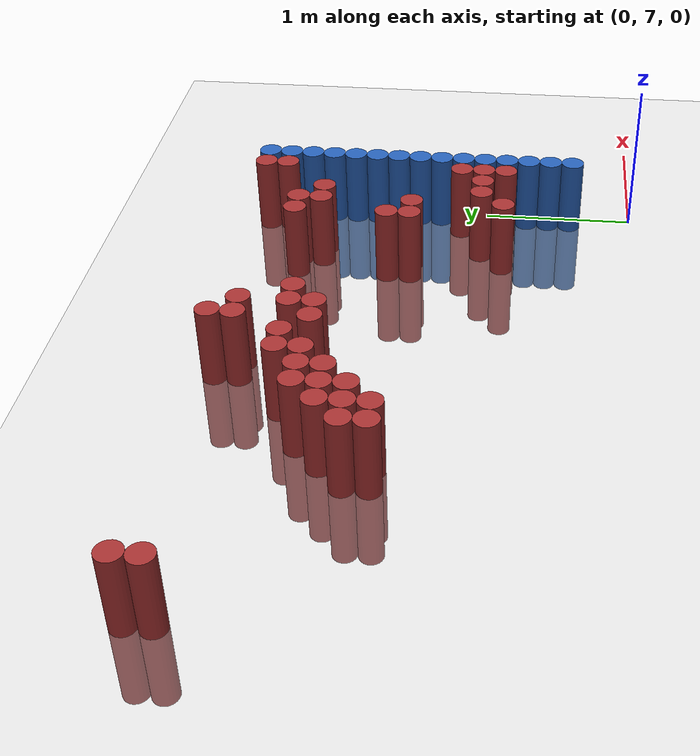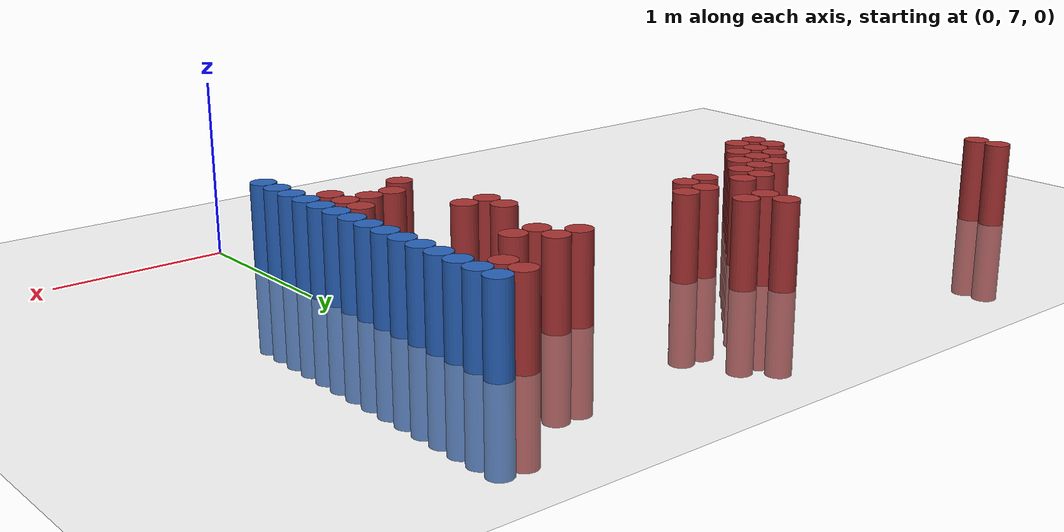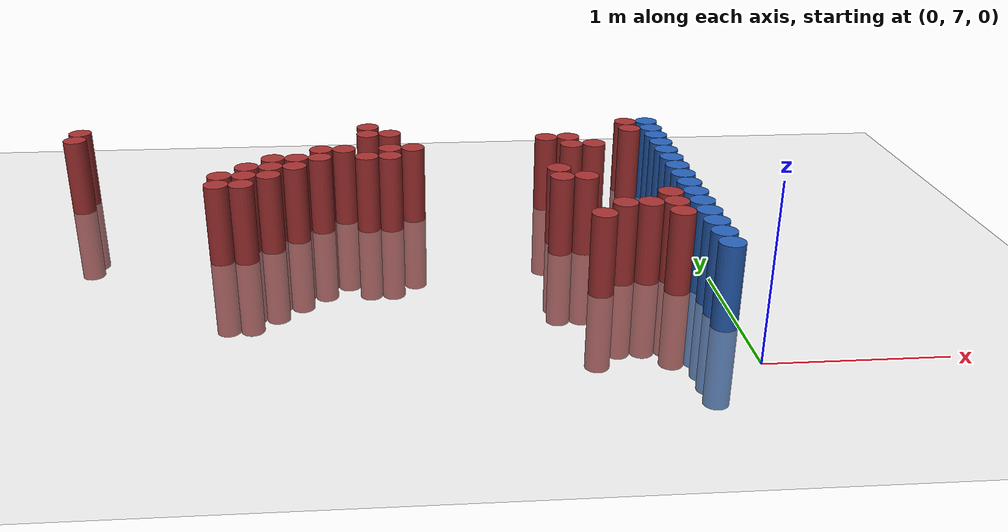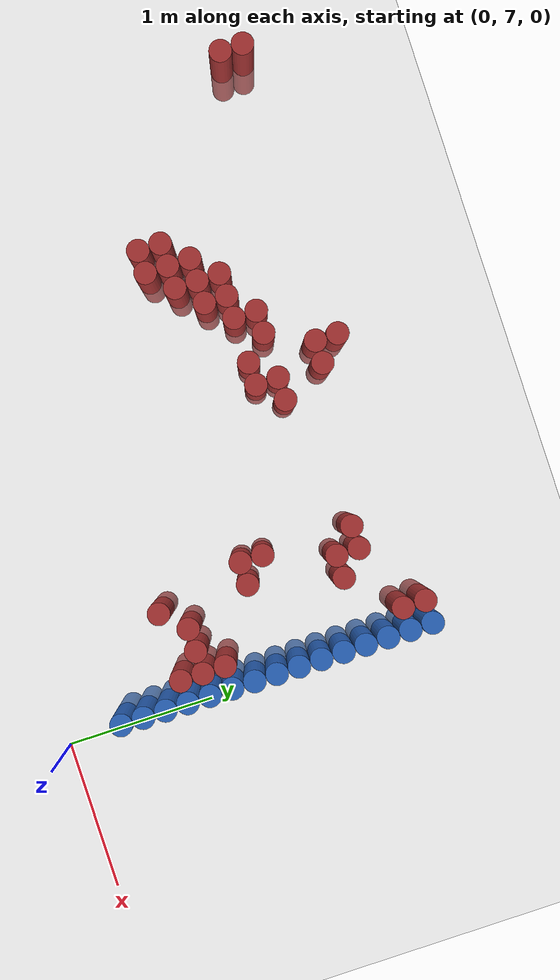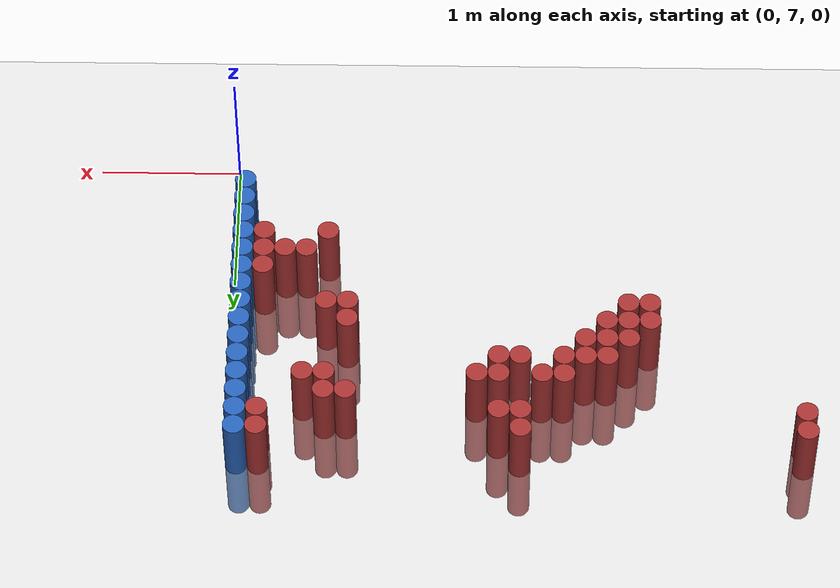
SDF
<sdf version="1.6">
 <world name="default">
  <model name="ground_plane">
   <static>1</static>
   <link name="link">
    <collision name="collision">
     <geometry><plane><normal>0 0 1</normal><size>100 100</size></plane></geometry>
     <surface><friction><ode><mu>100</mu><mu2>50</mu2></ode></friction></surface>
    </collision>
    <visual name="visual">
     <cast_shadows>0</cast_shadows>
     <geometry><plane><normal>0 0 1</normal><size>100 100</size></plane></geometry>
     <material>
      <script><uri>file://media/materials/scripts/gazebo.material</uri><name>Gazebo/Grey</name></script>
     </material>
    </visual>
   </link>
  </model>
  <model name="unit_cylinder_154">
   <static>1</static>
   <pose>-3.975000 9.375000 0.000000 0.000000 0.000000 0.000000</pose>
   <link name="link">
    <inertial>
     <mass>1</mass>
     <inertia><ixx>0.145833</ixx><ixy>0</ixy><ixz>0</ixz><iyy>0.145833</iyy><iyz>0</iyz><izz>0.125</izz></inertia>
    </inertial>
    <collision name="collision">
     <geometry><cylinder><radius>0.075000</radius><length>1</length></cylinder></geometry>
    </collision>
    <visual name="visual">
     <geometry><cylinder><radius>0.075000</radius><length>1</length></cylinder></geometry>
     <material>
      <ambient>0.648000 0.192000 0.192000 1</ambient>
      <diffuse>0.648000 0.192000 0.192000 1</diffuse>
     </material>
     <material>
      <script><name>Gazebo/Grey</name><uri>file://media/materials/scripts/gazebo.material</uri></script>
     </material>
    </visual>
   </link>
  </model>
  <model name="unit_cylinder_155">
   <static>1</static>
   <pose>-3.975000 9.525000 0.000000 0.000000 0.000000 0.000000</pose>
   <link name="link">
    <inertial>
     <mass>1</mass>
     <inertia><ixx>0.145833</ixx><ixy>0</ixy><ixz>0</ixz><iyy>0.145833</iyy><iyz>0</iyz><izz>0.125</izz></inertia>
    </inertial>
    <collision name="collision">
     <geometry><cylinder><radius>0.075000</radius><length>1</length></cylinder></geometry>
    </collision>
    <visual name="visual">
     <geometry><cylinder><radius>0.075000</radius><length>1</length></cylinder></geometry>
     <material>
      <ambient>0.648000 0.192000 0.192000 1</ambient>
      <diffuse>0.648000 0.192000 0.192000 1</diffuse>
     </material>
     <material>
      <script><name>Gazebo/Grey</name><uri>file://media/materials/scripts/gazebo.material</uri></script>
     </material>
    </visual>
   </link>
  </model>
  <model name="unit_cylinder_163">
   <static>1</static>
   <pose>-2.925000 8.475000 0.000000 0.000000 0.000000 0.000000</pose>
   <link name="link">
    <inertial>
     <mass>1</mass>
     <inertia><ixx>0.145833</ixx><ixy>0</ixy><ixz>0</ixz><iyy>0.145833</iyy><iyz>0</iyz><izz>0.125</izz></inertia>
    </inertial>
    <collision name="collision">
     <geometry><cylinder><radius>0.075000</radius><length>1</length></cylinder></geometry>
    </collision>
    <visual name="visual">
     <geometry><cylinder><radius>0.075000</radius><length>1</length></cylinder></geometry>
     <material>
      <ambient>0.648000 0.192000 0.192000 1</ambient>
      <diffuse>0.648000 0.192000 0.192000 1</diffuse>
     </material>
     <material>
      <script><name>Gazebo/Grey</name><uri>file://media/materials/scripts/gazebo.material</uri></script>
     </material>
    </visual>
   </link>
  </model>
  <model name="unit_cylinder_164">
   <static>1</static>
   <pose>-2.925000 8.625000 0.000000 0.000000 0.000000 0.000000</pose>
   <link name="link">
    <inertial>
     <mass>1</mass>
     <inertia><ixx>0.145833</ixx><ixy>0</ixy><ixz>0</ixz><iyy>0.145833</iyy><iyz>0</iyz><izz>0.125</izz></inertia>
    </inertial>
    <collision name="collision">
     <geometry><cylinder><radius>0.075000</radius><length>1</length></cylinder></geometry>
    </collision>
    <visual name="visual">
     <geometry><cylinder><radius>0.075000</radius><length>1</length></cylinder></geometry>
     <material>
      <ambient>0.648000 0.192000 0.192000 1</ambient>
      <diffuse>0.648000 0.192000 0.192000 1</diffuse>
     </material>
     <material>
      <script><name>Gazebo/Grey</name><uri>file://media/materials/scripts/gazebo.material</uri></script>
     </material>
    </visual>
   </link>
  </model>
  <model name="unit_cylinder_165">
   <static>1</static>
   <pose>-2.775000 8.475000 0.000000 0.000000 0.000000 0.000000</pose>
   <link name="link">
    <inertial>
     <mass>1</mass>
     <inertia><ixx>0.145833</ixx><ixy>0</ixy><ixz>0</ixz><iyy>0.145833</iyy><iyz>0</iyz><izz>0.125</izz></inertia>
    </inertial>
    <collision name="collision">
     <geometry><cylinder><radius>0.075000</radius><length>1</length></cylinder></geometry>
    </collision>
    <visual name="visual">
     <geometry><cylinder><radius>0.075000</radius><length>1</length></cylinder></geometry>
     <material>
      <ambient>0.648000 0.192000 0.192000 1</ambient>
      <diffuse>0.648000 0.192000 0.192000 1</diffuse>
     </material>
     <material>
      <script><name>Gazebo/Grey</name><uri>file://media/materials/scripts/gazebo.material</uri></script>
     </material>
    </visual>
   </link>
  </model>
  <model name="unit_cylinder_166">
   <static>1</static>
   <pose>-2.775000 8.625000 0.000000 0.000000 0.000000 0.000000</pose>
   <link name="link">
    <inertial>
     <mass>1</mass>
     <inertia><ixx>0.145833</ixx><ixy>0</ixy><ixz>0</ixz><iyy>0.145833</iyy><iyz>0</iyz><izz>0.125</izz></inertia>
    </inertial>
    <collision name="collision">
     <geometry><cylinder><radius>0.075000</radius><length>1</length></cylinder></geometry>
    </collision>
    <visual name="visual">
     <geometry><cylinder><radius>0.075000</radius><length>1</length></cylinder></geometry>
     <material>
      <ambient>0.648000 0.192000 0.192000 1</ambient>
      <diffuse>0.648000 0.192000 0.192000 1</diffuse>
     </material>
     <material>
      <script><name>Gazebo/Grey</name><uri>file://media/materials/scripts/gazebo.material</uri></script>
     </material>
    </visual>
   </link>
  </model>
  <model name="unit_cylinder_167">
   <static>1</static>
   <pose>-2.775000 8.775000 0.000000 0.000000 0.000000 0.000000</pose>
   <link name="link">
    <inertial>
     <mass>1</mass>
     <inertia><ixx>0.145833</ixx><ixy>0</ixy><ixz>0</ixz><iyy>0.145833</iyy><iyz>0</iyz><izz>0.125</izz></inertia>
    </inertial>
    <collision name="collision">
     <geometry><cylinder><radius>0.075000</radius><length>1</length></cylinder></geometry>
    </collision>
    <visual name="visual">
     <geometry><cylinder><radius>0.075000</radius><length>1</length></cylinder></geometry>
     <material>
      <ambient>0.648000 0.192000 0.192000 1</ambient>
      <diffuse>0.648000 0.192000 0.192000 1</diffuse>
     </material>
     <material>
      <script><name>Gazebo/Grey</name><uri>file://media/materials/scripts/gazebo.material</uri></script>
     </material>
    </visual>
   </link>
  </model>
  <model name="unit_cylinder_172">
   <static>1</static>
   <pose>-2.625000 8.625000 0.000000 0.000000 0.000000 0.000000</pose>
   <link name="link">
    <inertial>
     <mass>1</mass>
     <inertia><ixx>0.145833</ixx><ixy>0</ixy><ixz>0</ixz><iyy>0.145833</iyy><iyz>0</iyz><izz>0.125</izz></inertia>
    </inertial>
    <collision name="collision">
     <geometry><cylinder><radius>0.075000</radius><length>1</length></cylinder></geometry>
    </collision>
    <visual name="visual">
     <geometry><cylinder><radius>0.075000</radius><length>1</length></cylinder></geometry>
     <material>
      <ambient>0.648000 0.192000 0.192000 1</ambient>
      <diffuse>0.648000 0.192000 0.192000 1</diffuse>
     </material>
     <material>
      <script><name>Gazebo/Grey</name><uri>file://media/materials/scripts/gazebo.material</uri></script>
     </material>
    </visual>
   </link>
  </model>
  <model name="unit_cylinder_173">
   <static>1</static>
   <pose>-2.625000 8.775000 0.000000 0.000000 0.000000 0.000000</pose>
   <link name="link">
    <inertial>
     <mass>1</mass>
     <inertia><ixx>0.145833</ixx><ixy>0</ixy><ixz>0</ixz><iyy>0.145833</iyy><iyz>0</iyz><izz>0.125</izz></inertia>
    </inertial>
    <collision name="collision">
     <geometry><cylinder><radius>0.075000</radius><length>1</length></cylinder></geometry>
    </collision>
    <visual name="visual">
     <geometry><cylinder><radius>0.075000</radius><length>1</length></cylinder></geometry>
     <material>
      <ambient>0.648000 0.192000 0.192000 1</ambient>
      <diffuse>0.648000 0.192000 0.192000 1</diffuse>
     </material>
     <material>
      <script><name>Gazebo/Grey</name><uri>file://media/materials/scripts/gazebo.material</uri></script>
     </material>
    </visual>
   </link>
  </model>
  <model name="unit_cylinder_174">
   <static>1</static>
   <pose>-2.625000 8.925000 0.000000 0.000000 0.000000 0.000000</pose>
   <link name="link">
    <inertial>
     <mass>1</mass>
     <inertia><ixx>0.145833</ixx><ixy>0</ixy><ixz>0</ixz><iyy>0.145833</iyy><iyz>0</iyz><izz>0.125</izz></inertia>
    </inertial>
    <collision name="collision">
     <geometry><cylinder><radius>0.075000</radius><length>1</length></cylinder></geometry>
    </collision>
    <visual name="visual">
     <geometry><cylinder><radius>0.075000</radius><length>1</length></cylinder></geometry>
     <material>
      <ambient>0.648000 0.192000 0.192000 1</ambient>
      <diffuse>0.648000 0.192000 0.192000 1</diffuse>
     </material>
     <material>
      <script><name>Gazebo/Grey</name><uri>file://media/materials/scripts/gazebo.material</uri></script>
     </material>
    </visual>
   </link>
  </model>
  <model name="unit_cylinder_180">
   <static>1</static>
   <pose>-2.475000 8.775000 0.000000 0.000000 0.000000 0.000000</pose>
   <link name="link">
    <inertial>
     <mass>1</mass>
     <inertia><ixx>0.145833</ixx><ixy>0</ixy><ixz>0</ixz><iyy>0.145833</iyy><iyz>0</iyz><izz>0.125</izz></inertia>
    </inertial>
    <collision name="collision">
     <geometry><cylinder><radius>0.075000</radius><length>1</length></cylinder></geometry>
    </collision>
    <visual name="visual">
     <geometry><cylinder><radius>0.075000</radius><length>1</length></cylinder></geometry>
     <material>
      <ambient>0.648000 0.192000 0.192000 1</ambient>
      <diffuse>0.648000 0.192000 0.192000 1</diffuse>
     </material>
     <material>
      <script><name>Gazebo/Grey</name><uri>file://media/materials/scripts/gazebo.material</uri></script>
     </material>
    </visual>
   </link>
  </model>
  <model name="unit_cylinder_181">
   <static>1</static>
   <pose>-2.475000 8.925000 0.000000 0.000000 0.000000 0.000000</pose>
   <link name="link">
    <inertial>
     <mass>1</mass>
     <inertia><ixx>0.145833</ixx><ixy>0</ixy><ixz>0</ixz><iyy>0.145833</iyy><iyz>0</iyz><izz>0.125</izz></inertia>
    </inertial>
    <collision name="collision">
     <geometry><cylinder><radius>0.075000</radius><length>1</length></cylinder></geometry>
    </collision>
    <visual name="visual">
     <geometry><cylinder><radius>0.075000</radius><length>1</length></cylinder></geometry>
     <material>
      <ambient>0.648000 0.192000 0.192000 1</ambient>
      <diffuse>0.648000 0.192000 0.192000 1</diffuse>
     </material>
     <material>
      <script><name>Gazebo/Grey</name><uri>file://media/materials/scripts/gazebo.material</uri></script>
     </material>
    </visual>
   </link>
  </model>
  <model name="unit_cylinder_184">
   <static>1</static>
   <pose>-2.325000 8.925000 0.000000 0.000000 0.000000 0.000000</pose>
   <link name="link">
    <inertial>
     <mass>1</mass>
     <inertia><ixx>0.145833</ixx><ixy>0</ixy><ixz>0</ixz><iyy>0.145833</iyy><iyz>0</iyz><izz>0.125</izz></inertia>
    </inertial>
    <collision name="collision">
     <geometry><cylinder><radius>0.075000</radius><length>1</length></cylinder></geometry>
    </collision>
    <visual name="visual">
     <geometry><cylinder><radius>0.075000</radius><length>1</length></cylinder></geometry>
     <material>
      <ambient>0.648000 0.192000 0.192000 1</ambient>
      <diffuse>0.648000 0.192000 0.192000 1</diffuse>
     </material>
     <material>
      <script><name>Gazebo/Grey</name><uri>file://media/materials/scripts/gazebo.material</uri></script>
     </material>
    </visual>
   </link>
  </model>
  <model name="unit_cylinder_185">
   <static>1</static>
   <pose>-2.325000 9.075000 0.000000 0.000000 0.000000 0.000000</pose>
   <link name="link">
    <inertial>
     <mass>1</mass>
     <inertia><ixx>0.145833</ixx><ixy>0</ixy><ixz>0</ixz><iyy>0.145833</iyy><iyz>0</iyz><izz>0.125</izz></inertia>
    </inertial>
    <collision name="collision">
     <geometry><cylinder><radius>0.075000</radius><length>1</length></cylinder></geometry>
    </collision>
    <visual name="visual">
     <geometry><cylinder><radius>0.075000</radius><length>1</length></cylinder></geometry>
     <material>
      <ambient>0.648000 0.192000 0.192000 1</ambient>
      <diffuse>0.648000 0.192000 0.192000 1</diffuse>
     </material>
     <material>
      <script><name>Gazebo/Grey</name><uri>file://media/materials/scripts/gazebo.material</uri></script>
     </material>
    </visual>
   </link>
  </model>
  <model name="unit_cylinder_186">
   <static>1</static>
   <pose>-2.175000 9.075000 0.000000 0.000000 0.000000 0.000000</pose>
   <link name="link">
    <inertial>
     <mass>1</mass>
     <inertia><ixx>0.145833</ixx><ixy>0</ixy><ixz>0</ixz><iyy>0.145833</iyy><iyz>0</iyz><izz>0.125</izz></inertia>
    </inertial>
    <collision name="collision">
     <geometry><cylinder><radius>0.075000</radius><length>1</length></cylinder></geometry>
    </collision>
    <visual name="visual">
     <geometry><cylinder><radius>0.075000</radius><length>1</length></cylinder></geometry>
     <material>
      <ambient>0.648000 0.192000 0.192000 1</ambient>
      <diffuse>0.648000 0.192000 0.192000 1</diffuse>
     </material>
     <material>
      <script><name>Gazebo/Grey</name><uri>file://media/materials/scripts/gazebo.material</uri></script>
     </material>
    </visual>
   </link>
  </model>
  <model name="unit_cylinder_189">
   <static>1</static>
   <pose>-2.025000 8.925000 0.000000 0.000000 0.000000 0.000000</pose>
   <link name="link">
    <inertial>
     <mass>1</mass>
     <inertia><ixx>0.145833</ixx><ixy>0</ixy><ixz>0</ixz><iyy>0.145833</iyy><iyz>0</iyz><izz>0.125</izz></inertia>
    </inertial>
    <collision name="collision">
     <geometry><cylinder><radius>0.075000</radius><length>1</length></cylinder></geometry>
    </collision>
    <visual name="visual">
     <geometry><cylinder><radius>0.075000</radius><length>1</length></cylinder></geometry>
     <material>
      <ambient>0.648000 0.192000 0.192000 1</ambient>
      <diffuse>0.648000 0.192000 0.192000 1</diffuse>
     </material>
     <material>
      <script><name>Gazebo/Grey</name><uri>file://media/materials/scripts/gazebo.material</uri></script>
     </material>
    </visual>
   </link>
  </model>
  <model name="unit_cylinder_190">
   <static>1</static>
   <pose>-2.025000 9.375000 0.000000 0.000000 0.000000 0.000000</pose>
   <link name="link">
    <inertial>
     <mass>1</mass>
     <inertia><ixx>0.145833</ixx><ixy>0</ixy><ixz>0</ixz><iyy>0.145833</iyy><iyz>0</iyz><izz>0.125</izz></inertia>
    </inertial>
    <collision name="collision">
     <geometry><cylinder><radius>0.075000</radius><length>1</length></cylinder></geometry>
    </collision>
    <visual name="visual">
     <geometry><cylinder><radius>0.075000</radius><length>1</length></cylinder></geometry>
     <material>
      <ambient>0.648000 0.192000 0.192000 1</ambient>
      <diffuse>0.648000 0.192000 0.192000 1</diffuse>
     </material>
     <material>
      <script><name>Gazebo/Grey</name><uri>file://media/materials/scripts/gazebo.material</uri></script>
     </material>
    </visual>
   </link>
  </model>
  <model name="unit_cylinder_191">
   <static>1</static>
   <pose>-2.025000 9.525000 0.000000 0.000000 0.000000 0.000000</pose>
   <link name="link">
    <inertial>
     <mass>1</mass>
     <inertia><ixx>0.145833</ixx><ixy>0</ixy><ixz>0</ixz><iyy>0.145833</iyy><iyz>0</iyz><izz>0.125</izz></inertia>
    </inertial>
    <collision name="collision">
     <geometry><cylinder><radius>0.075000</radius><length>1</length></cylinder></geometry>
    </collision>
    <visual name="visual">
     <geometry><cylinder><radius>0.075000</radius><length>1</length></cylinder></geometry>
     <material>
      <ambient>0.648000 0.192000 0.192000 1</ambient>
      <diffuse>0.648000 0.192000 0.192000 1</diffuse>
     </material>
     <material>
      <script><name>Gazebo/Grey</name><uri>file://media/materials/scripts/gazebo.material</uri></script>
     </material>
    </visual>
   </link>
  </model>
  <model name="unit_cylinder_193">
   <static>1</static>
   <pose>-1.875000 8.925000 0.000000 0.000000 0.000000 0.000000</pose>
   <link name="link">
    <inertial>
     <mass>1</mass>
     <inertia><ixx>0.145833</ixx><ixy>0</ixy><ixz>0</ixz><iyy>0.145833</iyy><iyz>0</iyz><izz>0.125</izz></inertia>
    </inertial>
    <collision name="collision">
     <geometry><cylinder><radius>0.075000</radius><length>1</length></cylinder></geometry>
    </collision>
    <visual name="visual">
     <geometry><cylinder><radius>0.075000</radius><length>1</length></cylinder></geometry>
     <material>
      <ambient>0.648000 0.192000 0.192000 1</ambient>
      <diffuse>0.648000 0.192000 0.192000 1</diffuse>
     </material>
     <material>
      <script><name>Gazebo/Grey</name><uri>file://media/materials/scripts/gazebo.material</uri></script>
     </material>
    </visual>
   </link>
  </model>
  <model name="unit_cylinder_194">
   <static>1</static>
   <pose>-1.875000 9.075000 0.000000 0.000000 0.000000 0.000000</pose>
   <link name="link">
    <inertial>
     <mass>1</mass>
     <inertia><ixx>0.145833</ixx><ixy>0</ixy><ixz>0</ixz><iyy>0.145833</iyy><iyz>0</iyz><izz>0.125</izz></inertia>
    </inertial>
    <collision name="collision">
     <geometry><cylinder><radius>0.075000</radius><length>1</length></cylinder></geometry>
    </collision>
    <visual name="visual">
     <geometry><cylinder><radius>0.075000</radius><length>1</length></cylinder></geometry>
     <material>
      <ambient>0.648000 0.192000 0.192000 1</ambient>
      <diffuse>0.648000 0.192000 0.192000 1</diffuse>
     </material>
     <material>
      <script><name>Gazebo/Grey</name><uri>file://media/materials/scripts/gazebo.material</uri></script>
     </material>
    </visual>
   </link>
  </model>
  <model name="unit_cylinder_195">
   <static>1</static>
   <pose>-1.875000 9.375000 0.000000 0.000000 0.000000 0.000000</pose>
   <link name="link">
    <inertial>
     <mass>1</mass>
     <inertia><ixx>0.145833</ixx><ixy>0</ixy><ixz>0</ixz><iyy>0.145833</iyy><iyz>0</iyz><izz>0.125</izz></inertia>
    </inertial>
    <collision name="collision">
     <geometry><cylinder><radius>0.075000</radius><length>1</length></cylinder></geometry>
    </collision>
    <visual name="visual">
     <geometry><cylinder><radius>0.075000</radius><length>1</length></cylinder></geometry>
     <material>
      <ambient>0.648000 0.192000 0.192000 1</ambient>
      <diffuse>0.648000 0.192000 0.192000 1</diffuse>
     </material>
     <material>
      <script><name>Gazebo/Grey</name><uri>file://media/materials/scripts/gazebo.material</uri></script>
     </material>
    </visual>
   </link>
  </model>
  <model name="unit_cylinder_197">
   <static>1</static>
   <pose>-1.725000 9.075000 0.000000 0.000000 0.000000 0.000000</pose>
   <link name="link">
    <inertial>
     <mass>1</mass>
     <inertia><ixx>0.145833</ixx><ixy>0</ixy><ixz>0</ixz><iyy>0.145833</iyy><iyz>0</iyz><izz>0.125</izz></inertia>
    </inertial>
    <collision name="collision">
     <geometry><cylinder><radius>0.075000</radius><length>1</length></cylinder></geometry>
    </collision>
    <visual name="visual">
     <geometry><cylinder><radius>0.075000</radius><length>1</length></cylinder></geometry>
     <material>
      <ambient>0.648000 0.192000 0.192000 1</ambient>
      <diffuse>0.648000 0.192000 0.192000 1</diffuse>
     </material>
     <material>
      <script><name>Gazebo/Grey</name><uri>file://media/materials/scripts/gazebo.material</uri></script>
     </material>
    </visual>
   </link>
  </model>
  <model name="unit_cylinder_200">
   <static>1</static>
   <pose>-0.825000 8.475000 0.000000 0.000000 0.000000 0.000000</pose>
   <link name="link">
    <inertial>
     <mass>1</mass>
     <inertia><ixx>0.145833</ixx><ixy>0</ixy><ixz>0</ixz><iyy>0.145833</iyy><iyz>0</iyz><izz>0.125</izz></inertia>
    </inertial>
    <collision name="collision">
     <geometry><cylinder><radius>0.075000</radius><length>1</length></cylinder></geometry>
    </collision>
    <visual name="visual">
     <geometry><cylinder><radius>0.075000</radius><length>1</length></cylinder></geometry>
     <material>
      <ambient>0.648000 0.192000 0.192000 1</ambient>
      <diffuse>0.648000 0.192000 0.192000 1</diffuse>
     </material>
     <material>
      <script><name>Gazebo/Grey</name><uri>file://media/materials/scripts/gazebo.material</uri></script>
     </material>
    </visual>
   </link>
  </model>
  <model name="unit_cylinder_201">
   <static>1</static>
   <pose>-0.825000 8.625000 0.000000 0.000000 0.000000 0.000000</pose>
   <link name="link">
    <inertial>
     <mass>1</mass>
     <inertia><ixx>0.145833</ixx><ixy>0</ixy><ixz>0</ixz><iyy>0.145833</iyy><iyz>0</iyz><izz>0.125</izz></inertia>
    </inertial>
    <collision name="collision">
     <geometry><cylinder><radius>0.075000</radius><length>1</length></cylinder></geometry>
    </collision>
    <visual name="visual">
     <geometry><cylinder><radius>0.075000</radius><length>1</length></cylinder></geometry>
     <material>
      <ambient>0.648000 0.192000 0.192000 1</ambient>
      <diffuse>0.648000 0.192000 0.192000 1</diffuse>
     </material>
     <material>
      <script><name>Gazebo/Grey</name><uri>file://media/materials/scripts/gazebo.material</uri></script>
     </material>
    </visual>
   </link>
  </model>
  <model name="unit_cylinder_202">
   <static>1</static>
   <pose>-0.825000 9.225000 0.000000 0.000000 0.000000 0.000000</pose>
   <link name="link">
    <inertial>
     <mass>1</mass>
     <inertia><ixx>0.145833</ixx><ixy>0</ixy><ixz>0</ixz><iyy>0.145833</iyy><iyz>0</iyz><izz>0.125</izz></inertia>
    </inertial>
    <collision name="collision">
     <geometry><cylinder><radius>0.075000</radius><length>1</length></cylinder></geometry>
    </collision>
    <visual name="visual">
     <geometry><cylinder><radius>0.075000</radius><length>1</length></cylinder></geometry>
     <material>
      <ambient>0.648000 0.192000 0.192000 1</ambient>
      <diffuse>0.648000 0.192000 0.192000 1</diffuse>
     </material>
     <material>
      <script><name>Gazebo/Grey</name><uri>file://media/materials/scripts/gazebo.material</uri></script>
     </material>
    </visual>
   </link>
  </model>
  <model name="unit_cylinder_203">
   <static>1</static>
   <pose>-0.675000 7.875000 0.000000 0.000000 0.000000 0.000000</pose>
   <link name="link">
    <inertial>
     <mass>1</mass>
     <inertia><ixx>0.145833</ixx><ixy>0</ixy><ixz>0</ixz><iyy>0.145833</iyy><iyz>0</iyz><izz>0.125</izz></inertia>
    </inertial>
    <collision name="collision">
     <geometry><cylinder><radius>0.075000</radius><length>1</length></cylinder></geometry>
    </collision>
    <visual name="visual">
     <geometry><cylinder><radius>0.075000</radius><length>1</length></cylinder></geometry>
     <material>
      <ambient>0.648000 0.192000 0.192000 1</ambient>
      <diffuse>0.648000 0.192000 0.192000 1</diffuse>
     </material>
     <material>
      <script><name>Gazebo/Grey</name><uri>file://media/materials/scripts/gazebo.material</uri></script>
     </material>
    </visual>
   </link>
  </model>
  <model name="unit_cylinder_204">
   <static>1</static>
   <pose>-0.675000 8.475000 0.000000 0.000000 0.000000 0.000000</pose>
   <link name="link">
    <inertial>
     <mass>1</mass>
     <inertia><ixx>0.145833</ixx><ixy>0</ixy><ixz>0</ixz><iyy>0.145833</iyy><iyz>0</iyz><izz>0.125</izz></inertia>
    </inertial>
    <collision name="collision">
     <geometry><cylinder><radius>0.075000</radius><length>1</length></cylinder></geometry>
    </collision>
    <visual name="visual">
     <geometry><cylinder><radius>0.075000</radius><length>1</length></cylinder></geometry>
     <material>
      <ambient>0.648000 0.192000 0.192000 1</ambient>
      <diffuse>0.648000 0.192000 0.192000 1</diffuse>
     </material>
     <material>
      <script><name>Gazebo/Grey</name><uri>file://media/materials/scripts/gazebo.material</uri></script>
     </material>
    </visual>
   </link>
  </model>
  <model name="unit_cylinder_205">
   <static>1</static>
   <pose>-0.675000 9.075000 0.000000 0.000000 0.000000 0.000000</pose>
   <link name="link">
    <inertial>
     <mass>1</mass>
     <inertia><ixx>0.145833</ixx><ixy>0</ixy><ixz>0</ixz><iyy>0.145833</iyy><iyz>0</iyz><izz>0.125</izz></inertia>
    </inertial>
    <collision name="collision">
     <geometry><cylinder><radius>0.075000</radius><length>1</length></cylinder></geometry>
    </collision>
    <visual name="visual">
     <geometry><cylinder><radius>0.075000</radius><length>1</length></cylinder></geometry>
     <material>
      <ambient>0.648000 0.192000 0.192000 1</ambient>
      <diffuse>0.648000 0.192000 0.192000 1</diffuse>
     </material>
     <material>
      <script><name>Gazebo/Grey</name><uri>file://media/materials/scripts/gazebo.material</uri></script>
     </material>
    </visual>
   </link>
  </model>
  <model name="unit_cylinder_206">
   <static>1</static>
   <pose>-0.675000 9.225000 0.000000 0.000000 0.000000 0.000000</pose>
   <link name="link">
    <inertial>
     <mass>1</mass>
     <inertia><ixx>0.145833</ixx><ixy>0</ixy><ixz>0</ixz><iyy>0.145833</iyy><iyz>0</iyz><izz>0.125</izz></inertia>
    </inertial>
    <collision name="collision">
     <geometry><cylinder><radius>0.075000</radius><length>1</length></cylinder></geometry>
    </collision>
    <visual name="visual">
     <geometry><cylinder><radius>0.075000</radius><length>1</length></cylinder></geometry>
     <material>
      <ambient>0.648000 0.192000 0.192000 1</ambient>
      <diffuse>0.648000 0.192000 0.192000 1</diffuse>
     </material>
     <material>
      <script><name>Gazebo/Grey</name><uri>file://media/materials/scripts/gazebo.material</uri></script>
     </material>
    </visual>
   </link>
  </model>
  <model name="unit_cylinder_207">
   <static>1</static>
   <pose>-0.525000 8.025000 0.000000 0.000000 0.000000 0.000000</pose>
   <link name="link">
    <inertial>
     <mass>1</mass>
     <inertia><ixx>0.145833</ixx><ixy>0</ixy><ixz>0</ixz><iyy>0.145833</iyy><iyz>0</iyz><izz>0.125</izz></inertia>
    </inertial>
    <collision name="collision">
     <geometry><cylinder><radius>0.075000</radius><length>1</length></cylinder></geometry>
    </collision>
    <visual name="visual">
     <geometry><cylinder><radius>0.075000</radius><length>1</length></cylinder></geometry>
     <material>
      <ambient>0.648000 0.192000 0.192000 1</ambient>
      <diffuse>0.648000 0.192000 0.192000 1</diffuse>
     </material>
     <material>
      <script><name>Gazebo/Grey</name><uri>file://media/materials/scripts/gazebo.material</uri></script>
     </material>
    </visual>
   </link>
  </model>
  <model name="unit_cylinder_208">
   <static>1</static>
   <pose>-0.525000 9.075000 0.000000 0.000000 0.000000 0.000000</pose>
   <link name="link">
    <inertial>
     <mass>1</mass>
     <inertia><ixx>0.145833</ixx><ixy>0</ixy><ixz>0</ixz><iyy>0.145833</iyy><iyz>0</iyz><izz>0.125</izz></inertia>
    </inertial>
    <collision name="collision">
     <geometry><cylinder><radius>0.075000</radius><length>1</length></cylinder></geometry>
    </collision>
    <visual name="visual">
     <geometry><cylinder><radius>0.075000</radius><length>1</length></cylinder></geometry>
     <material>
      <ambient>0.648000 0.192000 0.192000 1</ambient>
      <diffuse>0.648000 0.192000 0.192000 1</diffuse>
     </material>
     <material>
      <script><name>Gazebo/Grey</name><uri>file://media/materials/scripts/gazebo.material</uri></script>
     </material>
    </visual>
   </link>
  </model>
  <model name="unit_cylinder_214">
   <static>1</static>
   <pose>-0.375000 8.025000 0.000000 0.000000 0.000000 0.000000</pose>
   <link name="link">
    <inertial>
     <mass>1</mass>
     <inertia><ixx>0.145833</ixx><ixy>0</ixy><ixz>0</ixz><iyy>0.145833</iyy><iyz>0</iyz><izz>0.125</izz></inertia>
    </inertial>
    <collision name="collision">
     <geometry><cylinder><radius>0.075000</radius><length>1</length></cylinder></geometry>
    </collision>
    <visual name="visual">
     <geometry><cylinder><radius>0.075000</radius><length>1</length></cylinder></geometry>
     <material>
      <ambient>0.648000 0.192000 0.192000 1</ambient>
      <diffuse>0.648000 0.192000 0.192000 1</diffuse>
     </material>
     <material>
      <script><name>Gazebo/Grey</name><uri>file://media/materials/scripts/gazebo.material</uri></script>
     </material>
    </visual>
   </link>
  </model>
  <model name="unit_cylinder_222">
   <static>1</static>
   <pose>-0.225000 7.875000 0.000000 0.000000 0.000000 0.000000</pose>
   <link name="link">
    <inertial>
     <mass>1</mass>
     <inertia><ixx>0.145833</ixx><ixy>0</ixy><ixz>0</ixz><iyy>0.145833</iyy><iyz>0</iyz><izz>0.125</izz></inertia>
    </inertial>
    <collision name="collision">
     <geometry><cylinder><radius>0.075000</radius><length>1</length></cylinder></geometry>
    </collision>
    <visual name="visual">
     <geometry><cylinder><radius>0.075000</radius><length>1</length></cylinder></geometry>
     <material>
      <ambient>0.648000 0.192000 0.192000 1</ambient>
      <diffuse>0.648000 0.192000 0.192000 1</diffuse>
     </material>
     <material>
      <script><name>Gazebo/Grey</name><uri>file://media/materials/scripts/gazebo.material</uri></script>
     </material>
    </visual>
   </link>
  </model>
  <model name="unit_cylinder_223">
   <static>1</static>
   <pose>-0.225000 8.025000 0.000000 0.000000 0.000000 0.000000</pose>
   <link name="link">
    <inertial>
     <mass>1</mass>
     <inertia><ixx>0.145833</ixx><ixy>0</ixy><ixz>0</ixz><iyy>0.145833</iyy><iyz>0</iyz><izz>0.125</izz></inertia>
    </inertial>
    <collision name="collision">
     <geometry><cylinder><radius>0.075000</radius><length>1</length></cylinder></geometry>
    </collision>
    <visual name="visual">
     <geometry><cylinder><radius>0.075000</radius><length>1</length></cylinder></geometry>
     <material>
      <ambient>0.648000 0.192000 0.192000 1</ambient>
      <diffuse>0.648000 0.192000 0.192000 1</diffuse>
     </material>
     <material>
      <script><name>Gazebo/Grey</name><uri>file://media/materials/scripts/gazebo.material</uri></script>
     </material>
    </visual>
   </link>
  </model>
  <model name="unit_cylinder_224">
   <static>1</static>
   <pose>-0.225000 8.175000 0.000000 0.000000 0.000000 0.000000</pose>
   <link name="link">
    <inertial>
     <mass>1</mass>
     <inertia><ixx>0.145833</ixx><ixy>0</ixy><ixz>0</ixz><iyy>0.145833</iyy><iyz>0</iyz><izz>0.125</izz></inertia>
    </inertial>
    <collision name="collision">
     <geometry><cylinder><radius>0.075000</radius><length>1</length></cylinder></geometry>
    </collision>
    <visual name="visual">
     <geometry><cylinder><radius>0.075000</radius><length>1</length></cylinder></geometry>
     <material>
      <ambient>0.648000 0.192000 0.192000 1</ambient>
      <diffuse>0.648000 0.192000 0.192000 1</diffuse>
     </material>
     <material>
      <script><name>Gazebo/Grey</name><uri>file://media/materials/scripts/gazebo.material</uri></script>
     </material>
    </visual>
   </link>
  </model>
  <model name="unit_cylinder_225">
   <static>1</static>
   <pose>-0.225000 9.375000 0.000000 0.000000 0.000000 0.000000</pose>
   <link name="link">
    <inertial>
     <mass>1</mass>
     <inertia><ixx>0.145833</ixx><ixy>0</ixy><ixz>0</ixz><iyy>0.145833</iyy><iyz>0</iyz><izz>0.125</izz></inertia>
    </inertial>
    <collision name="collision">
     <geometry><cylinder><radius>0.075000</radius><length>1</length></cylinder></geometry>
    </collision>
    <visual name="visual">
     <geometry><cylinder><radius>0.075000</radius><length>1</length></cylinder></geometry>
     <material>
      <ambient>0.648000 0.192000 0.192000 1</ambient>
      <diffuse>0.648000 0.192000 0.192000 1</diffuse>
     </material>
     <material>
      <script><name>Gazebo/Grey</name><uri>file://media/materials/scripts/gazebo.material</uri></script>
     </material>
    </visual>
   </link>
  </model>
  <model name="unit_cylinder_226">
   <static>1</static>
   <pose>-0.225000 9.525000 0.000000 0.000000 0.000000 0.000000</pose>
   <link name="link">
    <inertial>
     <mass>1</mass>
     <inertia><ixx>0.145833</ixx><ixy>0</ixy><ixz>0</ixz><iyy>0.145833</iyy><iyz>0</iyz><izz>0.125</izz></inertia>
    </inertial>
    <collision name="collision">
     <geometry><cylinder><radius>0.075000</radius><length>1</length></cylinder></geometry>
    </collision>
    <visual name="visual">
     <geometry><cylinder><radius>0.075000</radius><length>1</length></cylinder></geometry>
     <material>
      <ambient>0.648000 0.192000 0.192000 1</ambient>
      <diffuse>0.648000 0.192000 0.192000 1</diffuse>
     </material>
     <material>
      <script><name>Gazebo/Grey</name><uri>file://media/materials/scripts/gazebo.material</uri></script>
     </material>
    </visual>
   </link>
  </model>
  <model name="unit_cylinder_242">
   <static>1</static>
   <pose>-0.075000 7.425000 0.000000 0.000000 0.000000 0.000000</pose>
   <link name="link">
    <inertial>
     <mass>1</mass>
     <inertia><ixx>0.145833</ixx><ixy>0</ixy><ixz>0</ixz><iyy>0.145833</iyy><iyz>0</iyz><izz>0.125</izz></inertia>
    </inertial>
    <collision name="collision">
     <geometry><cylinder><radius>0.075000</radius><length>1</length></cylinder></geometry>
    </collision>
    <visual name="visual">
     <geometry><cylinder><radius>0.075000</radius><length>1</length></cylinder></geometry>
     <material>
      <ambient>0.152000 0.379000 0.720000 1</ambient>
      <diffuse>0.152000 0.379000 0.720000 1</diffuse>
     </material>
     <material>
      <script><name>Gazebo/Grey</name><uri>file://media/materials/scripts/gazebo.material</uri></script>
     </material>
    </visual>
   </link>
  </model>
  <model name="unit_cylinder_243">
   <static>1</static>
   <pose>-0.075000 7.575000 0.000000 0.000000 0.000000 0.000000</pose>
   <link name="link">
    <inertial>
     <mass>1</mass>
     <inertia><ixx>0.145833</ixx><ixy>0</ixy><ixz>0</ixz><iyy>0.145833</iyy><iyz>0</iyz><izz>0.125</izz></inertia>
    </inertial>
    <collision name="collision">
     <geometry><cylinder><radius>0.075000</radius><length>1</length></cylinder></geometry>
    </collision>
    <visual name="visual">
     <geometry><cylinder><radius>0.075000</radius><length>1</length></cylinder></geometry>
     <material>
      <ambient>0.152000 0.379000 0.720000 1</ambient>
      <diffuse>0.152000 0.379000 0.720000 1</diffuse>
     </material>
     <material>
      <script><name>Gazebo/Grey</name><uri>file://media/materials/scripts/gazebo.material</uri></script>
     </material>
    </visual>
   </link>
  </model>
  <model name="unit_cylinder_244">
   <static>1</static>
   <pose>-0.075000 7.725000 0.000000 0.000000 0.000000 0.000000</pose>
   <link name="link">
    <inertial>
     <mass>1</mass>
     <inertia><ixx>0.145833</ixx><ixy>0</ixy><ixz>0</ixz><iyy>0.145833</iyy><iyz>0</iyz><izz>0.125</izz></inertia>
    </inertial>
    <collision name="collision">
     <geometry><cylinder><radius>0.075000</radius><length>1</length></cylinder></geometry>
    </collision>
    <visual name="visual">
     <geometry><cylinder><radius>0.075000</radius><length>1</length></cylinder></geometry>
     <material>
      <ambient>0.152000 0.379000 0.720000 1</ambient>
      <diffuse>0.152000 0.379000 0.720000 1</diffuse>
     </material>
     <material>
      <script><name>Gazebo/Grey</name><uri>file://media/materials/scripts/gazebo.material</uri></script>
     </material>
    </visual>
   </link>
  </model>
  <model name="unit_cylinder_245">
   <static>1</static>
   <pose>-0.075000 7.875000 0.000000 0.000000 0.000000 0.000000</pose>
   <link name="link">
    <inertial>
     <mass>1</mass>
     <inertia><ixx>0.145833</ixx><ixy>0</ixy><ixz>0</ixz><iyy>0.145833</iyy><iyz>0</iyz><izz>0.125</izz></inertia>
    </inertial>
    <collision name="collision">
     <geometry><cylinder><radius>0.075000</radius><length>1</length></cylinder></geometry>
    </collision>
    <visual name="visual">
     <geometry><cylinder><radius>0.075000</radius><length>1</length></cylinder></geometry>
     <material>
      <ambient>0.152000 0.379000 0.720000 1</ambient>
      <diffuse>0.152000 0.379000 0.720000 1</diffuse>
     </material>
     <material>
      <script><name>Gazebo/Grey</name><uri>file://media/materials/scripts/gazebo.material</uri></script>
     </material>
    </visual>
   </link>
  </model>
  <model name="unit_cylinder_246">
   <static>1</static>
   <pose>-0.075000 8.025000 0.000000 0.000000 0.000000 0.000000</pose>
   <link name="link">
    <inertial>
     <mass>1</mass>
     <inertia><ixx>0.145833</ixx><ixy>0</ixy><ixz>0</ixz><iyy>0.145833</iyy><iyz>0</iyz><izz>0.125</izz></inertia>
    </inertial>
    <collision name="collision">
     <geometry><cylinder><radius>0.075000</radius><length>1</length></cylinder></geometry>
    </collision>
    <visual name="visual">
     <geometry><cylinder><radius>0.075000</radius><length>1</length></cylinder></geometry>
     <material>
      <ambient>0.152000 0.379000 0.720000 1</ambient>
      <diffuse>0.152000 0.379000 0.720000 1</diffuse>
     </material>
     <material>
      <script><name>Gazebo/Grey</name><uri>file://media/materials/scripts/gazebo.material</uri></script>
     </material>
    </visual>
   </link>
  </model>
  <model name="unit_cylinder_247">
   <static>1</static>
   <pose>-0.075000 8.175000 0.000000 0.000000 0.000000 0.000000</pose>
   <link name="link">
    <inertial>
     <mass>1</mass>
     <inertia><ixx>0.145833</ixx><ixy>0</ixy><ixz>0</ixz><iyy>0.145833</iyy><iyz>0</iyz><izz>0.125</izz></inertia>
    </inertial>
    <collision name="collision">
     <geometry><cylinder><radius>0.075000</radius><length>1</length></cylinder></geometry>
    </collision>
    <visual name="visual">
     <geometry><cylinder><radius>0.075000</radius><length>1</length></cylinder></geometry>
     <material>
      <ambient>0.152000 0.379000 0.720000 1</ambient>
      <diffuse>0.152000 0.379000 0.720000 1</diffuse>
     </material>
     <material>
      <script><name>Gazebo/Grey</name><uri>file://media/materials/scripts/gazebo.material</uri></script>
     </material>
    </visual>
   </link>
  </model>
  <model name="unit_cylinder_248">
   <static>1</static>
   <pose>-0.075000 8.325000 0.000000 0.000000 0.000000 0.000000</pose>
   <link name="link">
    <inertial>
     <mass>1</mass>
     <inertia><ixx>0.145833</ixx><ixy>0</ixy><ixz>0</ixz><iyy>0.145833</iyy><iyz>0</iyz><izz>0.125</izz></inertia>
    </inertial>
    <collision name="collision">
     <geometry><cylinder><radius>0.075000</radius><length>1</length></cylinder></geometry>
    </collision>
    <visual name="visual">
     <geometry><cylinder><radius>0.075000</radius><length>1</length></cylinder></geometry>
     <material>
      <ambient>0.152000 0.379000 0.720000 1</ambient>
      <diffuse>0.152000 0.379000 0.720000 1</diffuse>
     </material>
     <material>
      <script><name>Gazebo/Grey</name><uri>file://media/materials/scripts/gazebo.material</uri></script>
     </material>
    </visual>
   </link>
  </model>
  <model name="unit_cylinder_249">
   <static>1</static>
   <pose>-0.075000 8.475000 0.000000 0.000000 0.000000 0.000000</pose>
   <link name="link">
    <inertial>
     <mass>1</mass>
     <inertia><ixx>0.145833</ixx><ixy>0</ixy><ixz>0</ixz><iyy>0.145833</iyy><iyz>0</iyz><izz>0.125</izz></inertia>
    </inertial>
    <collision name="collision">
     <geometry><cylinder><radius>0.075000</radius><length>1</length></cylinder></geometry>
    </collision>
    <visual name="visual">
     <geometry><cylinder><radius>0.075000</radius><length>1</length></cylinder></geometry>
     <material>
      <ambient>0.152000 0.379000 0.720000 1</ambient>
      <diffuse>0.152000 0.379000 0.720000 1</diffuse>
     </material>
     <material>
      <script><name>Gazebo/Grey</name><uri>file://media/materials/scripts/gazebo.material</uri></script>
     </material>
    </visual>
   </link>
  </model>
  <model name="unit_cylinder_250">
   <static>1</static>
   <pose>-0.075000 8.625000 0.000000 0.000000 0.000000 0.000000</pose>
   <link name="link">
    <inertial>
     <mass>1</mass>
     <inertia><ixx>0.145833</ixx><ixy>0</ixy><ixz>0</ixz><iyy>0.145833</iyy><iyz>0</iyz><izz>0.125</izz></inertia>
    </inertial>
    <collision name="collision">
     <geometry><cylinder><radius>0.075000</radius><length>1</length></cylinder></geometry>
    </collision>
    <visual name="visual">
     <geometry><cylinder><radius>0.075000</radius><length>1</length></cylinder></geometry>
     <material>
      <ambient>0.152000 0.379000 0.720000 1</ambient>
      <diffuse>0.152000 0.379000 0.720000 1</diffuse>
     </material>
     <material>
      <script><name>Gazebo/Grey</name><uri>file://media/materials/scripts/gazebo.material</uri></script>
     </material>
    </visual>
   </link>
  </model>
  <model name="unit_cylinder_251">
   <static>1</static>
   <pose>-0.075000 8.775000 0.000000 0.000000 0.000000 0.000000</pose>
   <link name="link">
    <inertial>
     <mass>1</mass>
     <inertia><ixx>0.145833</ixx><ixy>0</ixy><ixz>0</ixz><iyy>0.145833</iyy><iyz>0</iyz><izz>0.125</izz></inertia>
    </inertial>
    <collision name="collision">
     <geometry><cylinder><radius>0.075000</radius><length>1</length></cylinder></geometry>
    </collision>
    <visual name="visual">
     <geometry><cylinder><radius>0.075000</radius><length>1</length></cylinder></geometry>
     <material>
      <ambient>0.152000 0.379000 0.720000 1</ambient>
      <diffuse>0.152000 0.379000 0.720000 1</diffuse>
     </material>
     <material>
      <script><name>Gazebo/Grey</name><uri>file://media/materials/scripts/gazebo.material</uri></script>
     </material>
    </visual>
   </link>
  </model>
  <model name="unit_cylinder_252">
   <static>1</static>
   <pose>-0.075000 8.925000 0.000000 0.000000 0.000000 0.000000</pose>
   <link name="link">
    <inertial>
     <mass>1</mass>
     <inertia><ixx>0.145833</ixx><ixy>0</ixy><ixz>0</ixz><iyy>0.145833</iyy><iyz>0</iyz><izz>0.125</izz></inertia>
    </inertial>
    <collision name="collision">
     <geometry><cylinder><radius>0.075000</radius><length>1</length></cylinder></geometry>
    </collision>
    <visual name="visual">
     <geometry><cylinder><radius>0.075000</radius><length>1</length></cylinder></geometry>
     <material>
      <ambient>0.152000 0.379000 0.720000 1</ambient>
      <diffuse>0.152000 0.379000 0.720000 1</diffuse>
     </material>
     <material>
      <script><name>Gazebo/Grey</name><uri>file://media/materials/scripts/gazebo.material</uri></script>
     </material>
    </visual>
   </link>
  </model>
  <model name="unit_cylinder_253">
   <static>1</static>
   <pose>-0.075000 9.075000 0.000000 0.000000 0.000000 0.000000</pose>
   <link name="link">
    <inertial>
     <mass>1</mass>
     <inertia><ixx>0.145833</ixx><ixy>0</ixy><ixz>0</ixz><iyy>0.145833</iyy><iyz>0</iyz><izz>0.125</izz></inertia>
    </inertial>
    <collision name="collision">
     <geometry><cylinder><radius>0.075000</radius><length>1</length></cylinder></geometry>
    </collision>
    <visual name="visual">
     <geometry><cylinder><radius>0.075000</radius><length>1</length></cylinder></geometry>
     <material>
      <ambient>0.152000 0.379000 0.720000 1</ambient>
      <diffuse>0.152000 0.379000 0.720000 1</diffuse>
     </material>
     <material>
      <script><name>Gazebo/Grey</name><uri>file://media/materials/scripts/gazebo.material</uri></script>
     </material>
    </visual>
   </link>
  </model>
  <model name="unit_cylinder_254">
   <static>1</static>
   <pose>-0.075000 9.225000 0.000000 0.000000 0.000000 0.000000</pose>
   <link name="link">
    <inertial>
     <mass>1</mass>
     <inertia><ixx>0.145833</ixx><ixy>0</ixy><ixz>0</ixz><iyy>0.145833</iyy><iyz>0</iyz><izz>0.125</izz></inertia>
    </inertial>
    <collision name="collision">
     <geometry><cylinder><radius>0.075000</radius><length>1</length></cylinder></geometry>
    </collision>
    <visual name="visual">
     <geometry><cylinder><radius>0.075000</radius><length>1</length></cylinder></geometry>
     <material>
      <ambient>0.152000 0.379000 0.720000 1</ambient>
      <diffuse>0.152000 0.379000 0.720000 1</diffuse>
     </material>
     <material>
      <script><name>Gazebo/Grey</name><uri>file://media/materials/scripts/gazebo.material</uri></script>
     </material>
    </visual>
   </link>
  </model>
  <model name="unit_cylinder_255">
   <static>1</static>
   <pose>-0.075000 9.375000 0.000000 0.000000 0.000000 0.000000</pose>
   <link name="link">
    <inertial>
     <mass>1</mass>
     <inertia><ixx>0.145833</ixx><ixy>0</ixy><ixz>0</ixz><iyy>0.145833</iyy><iyz>0</iyz><izz>0.125</izz></inertia>
    </inertial>
    <collision name="collision">
     <geometry><cylinder><radius>0.075000</radius><length>1</length></cylinder></geometry>
    </collision>
    <visual name="visual">
     <geometry><cylinder><radius>0.075000</radius><length>1</length></cylinder></geometry>
     <material>
      <ambient>0.152000 0.379000 0.720000 1</ambient>
      <diffuse>0.152000 0.379000 0.720000 1</diffuse>
     </material>
     <material>
      <script><name>Gazebo/Grey</name><uri>file://media/materials/scripts/gazebo.material</uri></script>
     </material>
    </visual>
   </link>
  </model>
  <model name="unit_cylinder_256">
   <static>1</static>
   <pose>-0.075000 9.525000 0.000000 0.000000 0.000000 0.000000</pose>
   <link name="link">
    <inertial>
     <mass>1</mass>
     <inertia><ixx>0.145833</ixx><ixy>0</ixy><ixz>0</ixz><iyy>0.145833</iyy><iyz>0</iyz><izz>0.125</izz></inertia>
    </inertial>
    <collision name="collision">
     <geometry><cylinder><radius>0.075000</radius><length>1</length></cylinder></geometry>
    </collision>
    <visual name="visual">
     <geometry><cylinder><radius>0.075000</radius><length>1</length></cylinder></geometry>
     <material>
      <ambient>0.152000 0.379000 0.720000 1</ambient>
      <diffuse>0.152000 0.379000 0.720000 1</diffuse>
     </material>
     <material>
      <script><name>Gazebo/Grey</name><uri>file://media/materials/scripts/gazebo.material</uri></script>
     </material>
    </visual>
   </link>
  </model>
 </world>
</sdf>
